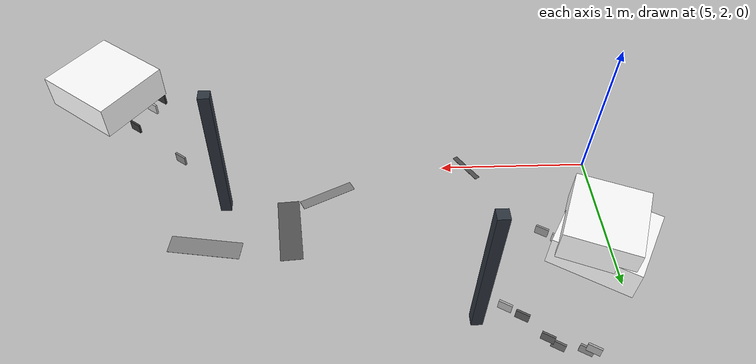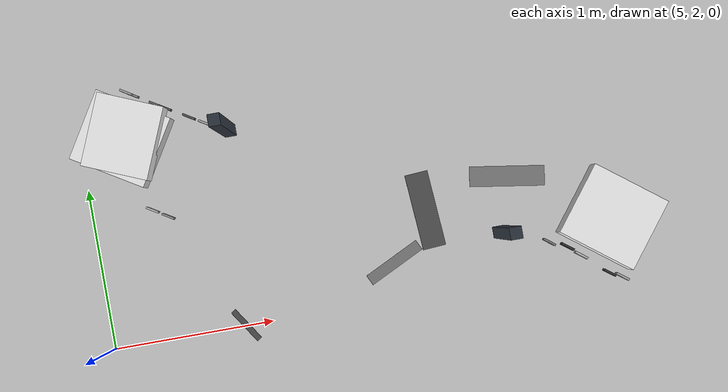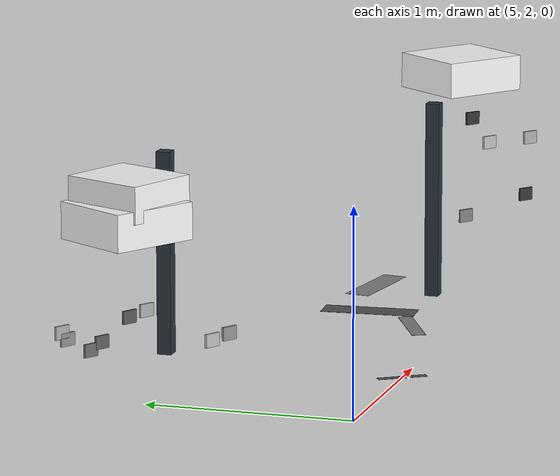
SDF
<sdf version="1.9">
 <world name="warehouse_irregular">
  <model name="concrete_patch_112">
   <static>true</static>
   <pose>7.055083673767573 2.518178841576077 0.0006 0 0 1.64464389095252</pose>
   <link name="body">
    <visual name="surface">
     <geometry><box><size>0.4794923684420618 0.1455520728130107 0.001</size></box></geometry>
     <material>
      <ambient>0.3248802273355627 0.3248802273355627 0.3248802273355627 1</ambient>
      <diffuse>0.3248802273355627 0.3248802273355627 0.3248802273355627 1</diffuse>
     </material>
    </visual>
   </link>
  </model>
  <model name="concrete_patch_123">
   <static>true</static>
   <pose>7.596497263077794 2.6403748588845986 0.0006 0 0 2.9891427274702496</pose>
   <link name="body">
    <visual name="surface">
     <geometry><box><size>0.4707286472788569 0.12645427898444525 0.001</size></box></geometry>
     <material>
      <ambient>0.505222338849785 0.505222338849785 0.505222338849785 1</ambient>
      <diffuse>0.505222338849785 0.505222338849785 0.505222338849785 1</diffuse>
     </material>
    </visual>
   </link>
  </model>
  <model name="concrete_patch_155">
   <static>true</static>
   <pose>6.807911834374593 2.228476794952158 0.0006 0 0 0.45497781734479137</pose>
   <link name="body">
    <visual name="surface">
     <geometry><box><size>0.3802459093432334 0.07094432589253111 0.001</size></box></geometry>
     <material>
      <ambient>0.4931672169510813 0.4931672169510813 0.4931672169510813 1</ambient>
      <diffuse>0.4931672169510813 0.4931672169510813 0.4931672169510813 1</diffuse>
     </material>
    </visual>
   </link>
  </model>
  <model name="concrete_patch_157">
   <static>true</static>
   <pose>5.827748994167553 2.0028987765848996 0.0006 0 0 -0.9888741123409339</pose>
   <link name="body">
    <visual name="surface">
     <geometry><box><size>0.24177313320094335 0.035853621666547986 0.001</size></box></geometry>
     <material>
      <ambient>0.31150672405362306 0.31150672405362306 0.31150672405362306 1</ambient>
      <diffuse>0.31150672405362306 0.31150672405362306 0.31150672405362306 1</diffuse>
     </material>
    </visual>
   </link>
  </model>
  <model name="panel_5_1_-1">
   <static>true</static>
   <pose>7.738111107413876 2.2016923131123223 0.36876414017484127 0 0 -0.6509207918832999</pose>
   <link name="body">
    <visual name="surface">
     <geometry><box><size>0.08 0.012 0.065</size></box></geometry>
     <material>
      <ambient>0.5218005301994358 0.5218005301994358 0.5218005301994358 1</ambient>
      <diffuse>0.5218005301994358 0.5218005301994358 0.5218005301994358 1</diffuse>
     </material>
    </visual>
   </link>
  </model>
  <model name="panel_5_2_-1">
   <static>true</static>
   <pose>8.051405473503198 1.9630690448381154 0.4331476063568874 0 0 -0.6509207918832999</pose>
   <link name="body">
    <visual name="surface">
     <geometry><box><size>0.08 0.012 0.065</size></box></geometry>
     <material>
      <ambient>0.22529011681224803 0.22529011681224803 0.22529011681224803 1</ambient>
      <diffuse>0.22529011681224803 0.22529011681224803 0.22529011681224803 1</diffuse>
     </material>
    </visual>
   </link>
  </model>
  <model name="panel_5_4_-1">
   <static>true</static>
   <pose>7.768809360825108 2.1783107322344546 0.8760011368677418 0 0 -0.6509207918832999</pose>
   <link name="body">
    <visual name="surface">
     <geometry><box><size>0.08 0.012 0.065</size></box></geometry>
     <material>
      <ambient>0.20758217356934827 0.20758217356934827 0.20758217356934827 1</ambient>
      <diffuse>0.20758217356934827 0.20758217356934827 0.20758217356934827 1</diffuse>
     </material>
    </visual>
   </link>
  </model>
  <model name="panel_5_5_-1">
   <static>true</static>
   <pose>8.070154988263624 1.9487883204620735 0.7317494060061005 0 0 -0.6509207918832999</pose>
   <link name="body">
    <visual name="surface">
     <geometry><box><size>0.08 0.012 0.065</size></box></geometry>
     <material>
      <ambient>0.7044058374249317 0.7044058374249317 0.7044058374249317 1</ambient>
      <diffuse>0.7044058374249317 0.7044058374249317 0.7044058374249317 1</diffuse>
     </material>
    </visual>
   </link>
  </model>
  <model name="panel_5_6_-1">
   <static>true</static>
   <pose>7.857788707644299 2.110538870225145 0.7370553252607454 0 0 -0.6509207918832999</pose>
   <link name="body">
    <visual name="surface">
     <geometry><box><size>0.08 0.012 0.065</size></box></geometry>
     <material>
      <ambient>0.7644556485465961 0.7644556485465961 0.7644556485465961 1</ambient>
      <diffuse>0.7644556485465961 0.7644556485465961 0.7644556485465961 1</diffuse>
     </material>
    </visual>
   </link>
  </model>
  <model name="carton_5_0">
   <static>true</static>
   <pose>8.008629222293049 2.3060066962295953 1.0738367426065136 0 0 -0.6509207918832999</pose>
   <link name="body">
    <visual name="surface">
     <geometry><box><size>0.45 0.42 0.18</size></box></geometry>
     <material>
      <ambient>1 1 1 1</ambient>
      <diffuse>1 1 1 1</diffuse>
      <pbr>
       <metal>
        <albedo_map>model://feature_warehouse_materials/textures/storage_05.png</albedo_map>
        <roughness>.9</roughness>
        <metalness>0</metalness>
       </metal>
      </pbr>
     </material>
    </visual>
    <collision name="solid"><geometry><box><size>0.45 0.42 0.18</size></box></geometry></collision>
   </link>
  </model>
  <model name="post_5_-1">
   <static>true</static>
   <pose>7.484521649759363 2.3060066962295953 0.5 0 0 0</pose>
   <link name="body">
    <visual name="surface">
     <geometry><box><size>0.07 0.07 1</size></box></geometry>
     <material><ambient>0.18 0.21 0.25 1</ambient><diffuse>0.18 0.21 0.25 1</diffuse></material>
    </visual>
    <collision name="solid"><geometry><box><size>0.07 0.07 1</size></box></geometry></collision>
   </link>
  </model>
  <model name="panel_7_0_-1">
   <static>true</static>
   <pose>5.49712510903287 2.754615380675134 0.23954500062217138 0 0 -0.5453323589322374</pose>
   <link name="body">
    <visual name="surface">
     <geometry><box><size>0.08 0.012 0.065</size></box></geometry>
     <material>
      <ambient>0.5951065696353268 0.5951065696353268 0.5951065696353268 1</ambient>
      <diffuse>0.5951065696353268 0.5951065696353268 0.5951065696353268 1</diffuse>
     </material>
    </visual>
   </link>
  </model>
  <model name="panel_7_0_1">
   <static>true</static>
   <pose>5.813533494379292 3.2761378957044185 0.23954500062217138 0 0 -0.5453323589322374</pose>
   <link name="body">
    <visual name="surface">
     <geometry><box><size>0.08 0.012 0.065</size></box></geometry>
     <material>
      <ambient>0.7003088539368403 0.7003088539368403 0.7003088539368403 1</ambient>
      <diffuse>0.7003088539368403 0.7003088539368403 0.7003088539368403 1</diffuse>
     </material>
    </visual>
   </link>
  </model>
  <model name="panel_7_1_1">
   <static>true</static>
   <pose>5.399369436319884 3.52741176615609 0.17638861393600958 0 0 -0.5453323589322374</pose>
   <link name="body">
    <visual name="surface">
     <geometry><box><size>0.08 0.012 0.065</size></box></geometry>
     <material>
      <ambient>0.5697147468683791 0.5697147468683791 0.5697147468683791 1</ambient>
      <diffuse>0.5697147468683791 0.5697147468683791 0.5697147468683791 1</diffuse>
     </material>
    </visual>
   </link>
  </model>
  <model name="panel_7_2_1">
   <static>true</static>
   <pose>5.577301394196112 3.4194602168543637 0.12805538119614918 0 0 -0.5453323589322374</pose>
   <link name="body">
    <visual name="surface">
     <geometry><box><size>0.08 0.012 0.065</size></box></geometry>
     <material>
      <ambient>0.38541003055669165 0.38541003055669165 0.38541003055669165 1</ambient>
      <diffuse>0.38541003055669165 0.38541003055669165 0.38541003055669165 1</diffuse>
     </material>
    </visual>
   </link>
  </model>
  <model name="panel_7_3_-1">
   <static>true</static>
   <pose>5.40695338617007 2.8093226817267896 0.22347113253545442 0 0 -0.5453323589322374</pose>
   <link name="body">
    <visual name="surface">
     <geometry><box><size>0.08 0.012 0.065</size></box></geometry>
     <material>
      <ambient>0.7587513759629306 0.7587513759629306 0.7587513759629306 1</ambient>
      <diffuse>0.7587513759629306 0.7587513759629306 0.7587513759629306 1</diffuse>
     </material>
    </visual>
   </link>
  </model>
  <model name="panel_7_3_1">
   <static>true</static>
   <pose>5.723361771516491 3.330845196756074 0.22347113253545442 0 0 -0.5453323589322374</pose>
   <link name="body">
    <visual name="surface">
     <geometry><box><size>0.08 0.012 0.065</size></box></geometry>
     <material>
      <ambient>0.35639396855116356 0.35639396855116356 0.35639396855116356 1</ambient>
      <diffuse>0.35639396855116356 0.35639396855116356 0.35639396855116356 1</diffuse>
     </material>
    </visual>
   </link>
  </model>
  <model name="panel_7_4_1">
   <static>true</static>
   <pose>5.370922556272463 3.5446705251253796 0.21525733530375743 0 0 -0.5453323589322374</pose>
   <link name="body">
    <visual name="surface">
     <geometry><box><size>0.08 0.012 0.065</size></box></geometry>
     <material>
      <ambient>0.6853289492944502 0.6853289492944502 0.6853289492944502 1</ambient>
      <diffuse>0.6853289492944502 0.6853289492944502 0.6853289492944502 1</diffuse>
     </material>
    </visual>
   </link>
  </model>
  <model name="panel_7_5_1">
   <static>true</static>
   <pose>5.519648798883867 3.454438121102186 0.09918375609093633 0 0 -0.5453323589322374</pose>
   <link name="body">
    <visual name="surface">
     <geometry><box><size>0.08 0.012 0.065</size></box></geometry>
     <material>
      <ambient>0.4390591716765312 0.4390591716765312 0.4390591716765312 1</ambient>
      <diffuse>0.4390591716765312 0.4390591716765312 0.4390591716765312 1</diffuse>
     </material>
    </visual>
   </link>
  </model>
  <model name="carton_7_0">
   <static>true</static>
   <pose>5.3844959475778 3.219551046961353 0.7760744878614075 0 0 -0.5453323589322374</pose>
   <link name="body">
    <visual name="surface">
     <geometry><box><size>0.45 0.42 0.18</size></box></geometry>
     <material>
      <ambient>1 1 1 1</ambient>
      <diffuse>1 1 1 1</diffuse>
      <pbr>
       <metal>
        <albedo_map>model://feature_warehouse_materials/textures/storage_07.png</albedo_map>
        <roughness>.9</roughness>
        <metalness>0</metalness>
       </metal>
      </pbr>
     </material>
    </visual>
    <collision name="solid"><geometry><box><size>0.45 0.42 0.18</size></box></geometry></collision>
   </link>
  </model>
  <model name="carton_7_1">
   <static>true</static>
   <pose>5.417733112368259 3.219551046961353 0.8960744878614075 0 0 -0.3953323589322374</pose>
   <link name="body">
    <visual name="surface">
     <geometry><box><size>0.38 0.42 0.18</size></box></geometry>
     <material>
      <ambient>1 1 1 1</ambient>
      <diffuse>1 1 1 1</diffuse>
      <pbr>
       <metal>
        <albedo_map>model://feature_warehouse_materials/textures/storage_07.png</albedo_map>
        <roughness>.9</roughness>
        <metalness>0</metalness>
       </metal>
      </pbr>
     </material>
    </visual>
    <collision name="solid"><geometry><box><size>0.38 0.42 0.18</size></box></geometry></collision>
   </link>
  </model>
  <model name="post_7_1">
   <static>true</static>
   <pose>5.9387972877059205 3.219551046961353 0.5 0 0 0</pose>
   <link name="body">
    <visual name="surface">
     <geometry><box><size>0.07 0.07 1</size></box></geometry>
     <material><ambient>0.18 0.21 0.25 1</ambient><diffuse>0.18 0.21 0.25 1</diffuse></material>
    </visual>
    <collision name="solid"><geometry><box><size>0.07 0.07 1</size></box></geometry></collision>
   </link>
  </model>
 </world>
</sdf>
